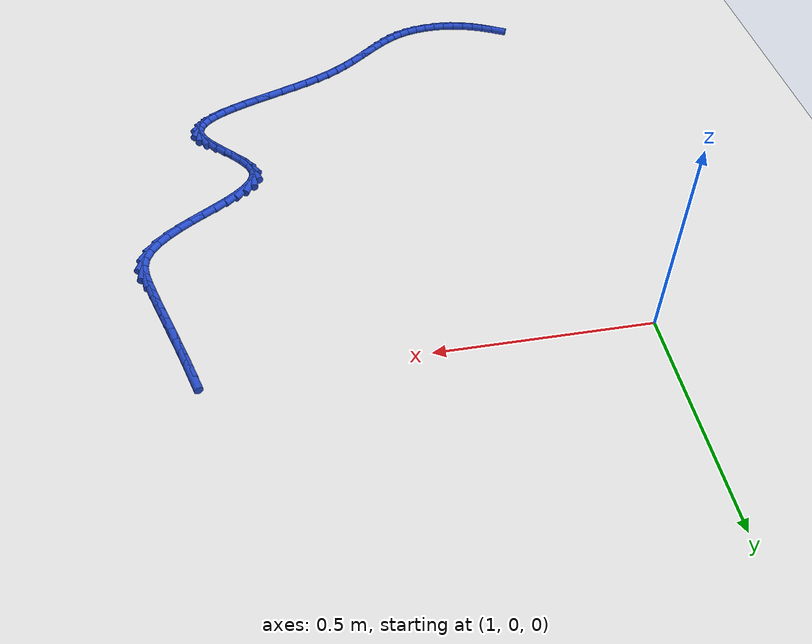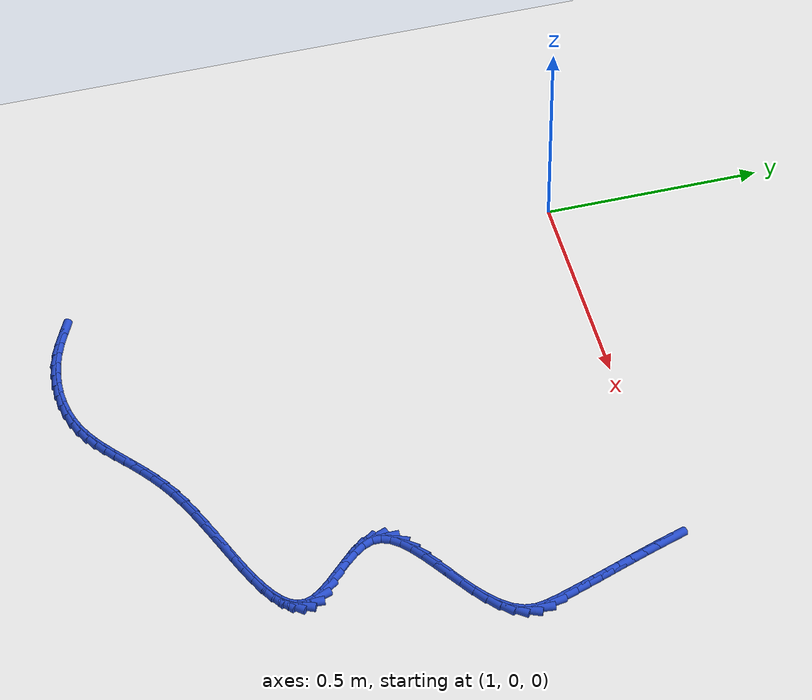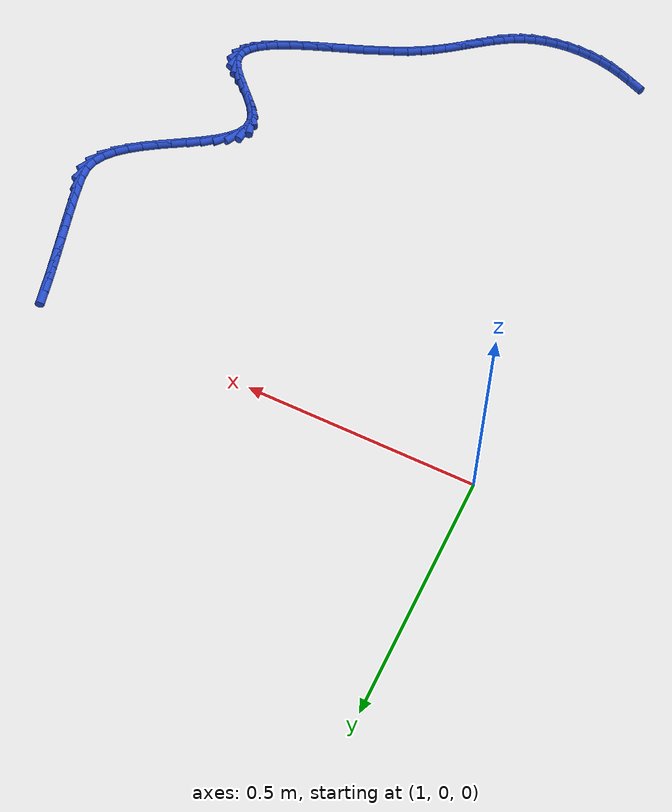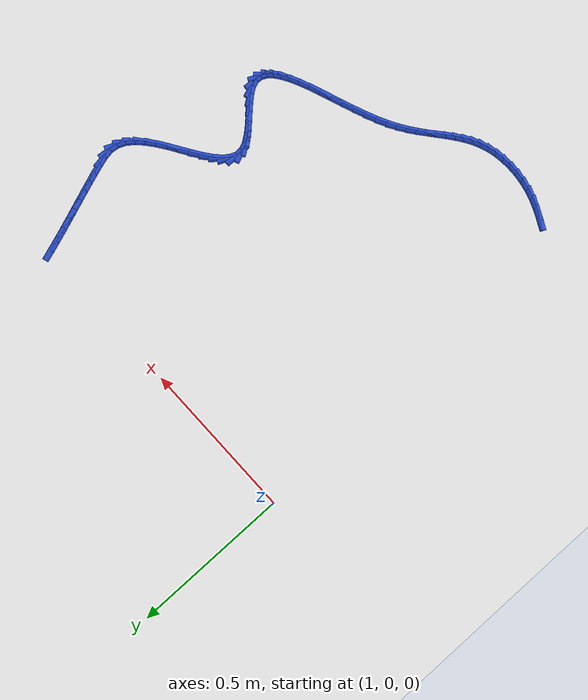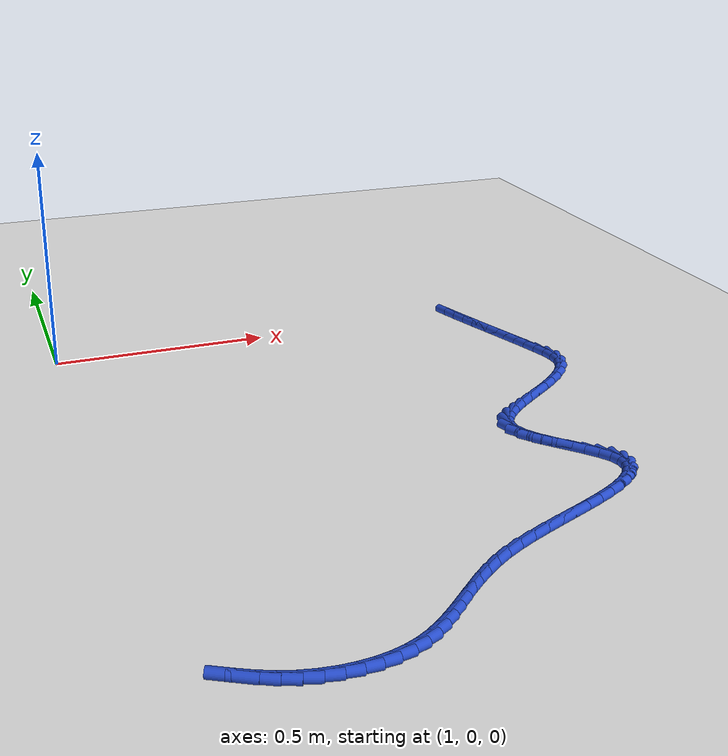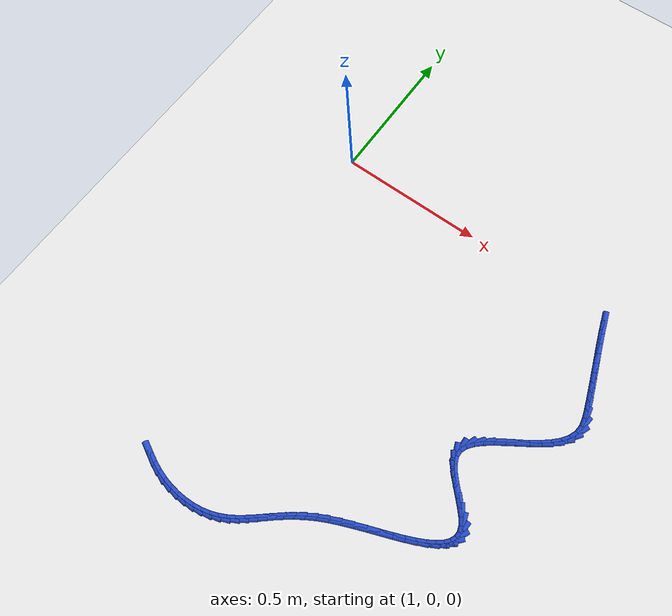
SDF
<sdf version="1.6">
 <world name="default">
  <model name="ground_plane">
   <static>1</static>
   <link name="link">
    <collision name="collision">
     <geometry><plane><normal>0 0 1</normal><size>100 100</size></plane></geometry>
     <surface><friction><ode><mu>100</mu><mu2>50</mu2></ode></friction></surface>
    </collision>
    <visual name="visual">
     <cast_shadows>0</cast_shadows>
     <geometry><plane><normal>0 0 1</normal><size>100 100</size></plane></geometry>
     <material>
      <script><uri>file://media/materials/scripts/gazebo.material</uri><name>Gazebo/WhiteGlow</name></script>
     </material>
    </visual>
   </link>
  </model>
  <model name="line">
   <link name="link_136">
    <pose>2.006014510646212 -0.01637479928357697 0.01 0 1.57 -1.2514243020412616</pose>
    <collision name="collision">
     <geometry><cylinder><radius>0.01</radius><length>0.08</length></cylinder></geometry>
    </collision>
    <visual name="visual">
     <material>
      <script><name>Gazebo/Blue</name><uri>file://media/materials/scripts/gazebo.material</uri></script>
     </material>
     <geometry><cylinder><radius>0.01</radius><length>0.08</length></cylinder></geometry>
    </visual>
   </link>
   <link name="link_137">
    <pose>2.0161293999224874 -0.04696178227051483 0.01 0 1.57 -1.2392567052643202</pose>
    <collision name="collision">
     <geometry><cylinder><radius>0.01</radius><length>0.08</length></cylinder></geometry>
    </collision>
    <visual name="visual">
     <material>
      <script><name>Gazebo/Blue</name><uri>file://media/materials/scripts/gazebo.material</uri></script>
     </material>
     <geometry><cylinder><radius>0.01</radius><length>0.08</length></cylinder></geometry>
    </visual>
   </link>
   <link name="link_138">
    <pose>2.0266727700992804 -0.0775892091995034 0.01 0 1.57 -1.2305973145243494</pose>
    <collision name="collision">
     <geometry><cylinder><radius>0.01</radius><length>0.08</length></cylinder></geometry>
    </collision>
    <visual name="visual">
     <material>
      <script><name>Gazebo/Blue</name><uri>file://media/materials/scripts/gazebo.material</uri></script>
     </material>
     <geometry><cylinder><radius>0.01</radius><length>0.08</length></cylinder></geometry>
    </visual>
   </link>
   <link name="link_139">
    <pose>2.0375050558095142 -0.10819227443157586 0.01 0 1.57 -1.2253384436629051</pose>
    <collision name="collision">
     <geometry><cylinder><radius>0.01</radius><length>0.08</length></cylinder></geometry>
    </collision>
    <visual name="visual">
     <material>
      <script><name>Gazebo/Blue</name><uri>file://media/materials/scripts/gazebo.material</uri></script>
     </material>
     <geometry><cylinder><radius>0.01</radius><length>0.08</length></cylinder></geometry>
    </visual>
   </link>
   <link name="link_140">
    <pose>2.0484866916861124 -0.13870617232776805 0.01 0 1.57 -1.223438492748387</pose>
    <collision name="collision">
     <geometry><cylinder><radius>0.01</radius><length>0.08</length></cylinder></geometry>
    </collision>
    <visual name="visual">
     <material>
      <script><name>Gazebo/Blue</name><uri>file://media/materials/scripts/gazebo.material</uri></script>
     </material>
     <geometry><cylinder><radius>0.01</radius><length>0.08</length></cylinder></geometry>
    </visual>
   </link>
   <link name="link_141">
    <pose>2.0594781123619996 -0.16906609724911587 0.01 0 1.57 -1.224922772293382</pose>
    <collision name="collision">
     <geometry><cylinder><radius>0.01</radius><length>0.08</length></cylinder></geometry>
    </collision>
    <visual name="visual">
     <material>
      <script><name>Gazebo/Blue</name><uri>file://media/materials/scripts/gazebo.material</uri></script>
     </material>
     <geometry><cylinder><radius>0.01</radius><length>0.08</length></cylinder></geometry>
    </visual>
   </link>
   <link name="link_142">
    <pose>2.0703397524700975 -0.19920724355665245 0.01 0 1.57 -1.2298865252566986</pose>
    <collision name="collision">
     <geometry><cylinder><radius>0.01</radius><length>0.08</length></cylinder></geometry>
    </collision>
    <visual name="visual">
     <material>
      <script><name>Gazebo/Blue</name><uri>file://media/materials/scripts/gazebo.material</uri></script>
     </material>
     <geometry><cylinder><radius>0.01</radius><length>0.08</length></cylinder></geometry>
    </visual>
   </link>
   <link name="link_143">
    <pose>2.0809320466433303 -0.2290648056114145 0.01 0 1.57 -1.2385004539938334</pose>
    <collision name="collision">
     <geometry><cylinder><radius>0.01</radius><length>0.08</length></cylinder></geometry>
    </collision>
    <visual name="visual">
     <material>
      <script><name>Gazebo/Blue</name><uri>file://media/materials/scripts/gazebo.material</uri></script>
     </material>
     <geometry><cylinder><radius>0.01</radius><length>0.08</length></cylinder></geometry>
    </visual>
   </link>
   <link name="link_144">
    <pose>2.0911154295146215 -0.2585739777744353 0.01 0 1.57 -1.2510190718284917</pose>
    <collision name="collision">
     <geometry><cylinder><radius>0.01</radius><length>0.08</length></cylinder></geometry>
    </collision>
    <visual name="visual">
     <material>
      <script><name>Gazebo/Blue</name><uri>file://media/materials/scripts/gazebo.material</uri></script>
     </material>
     <geometry><cylinder><radius>0.01</radius><length>0.08</length></cylinder></geometry>
    </visual>
   </link>
   <link name="link_145">
    <pose>2.100750335716894 -0.2876699544067516 0.01 0 1.57 -1.278057567097977</pose>
    <collision name="collision">
     <geometry><cylinder><radius>0.01</radius><length>0.08</length></cylinder></geometry>
    </collision>
    <visual name="visual">
     <material>
      <script><name>Gazebo/Blue</name><uri>file://media/materials/scripts/gazebo.material</uri></script>
     </material>
     <geometry><cylinder><radius>0.01</radius><length>0.08</length></cylinder></geometry>
    </visual>
   </link>
   <link name="link_146">
    <pose>2.1093610694647578 -0.3162392785658507 0.01 0 1.57 -1.4039570924049876</pose>
    <collision name="collision">
     <geometry><cylinder><radius>0.01</radius><length>0.08</length></cylinder></geometry>
    </collision>
    <visual name="visual">
     <material>
      <script><name>Gazebo/Blue</name><uri>file://media/materials/scripts/gazebo.material</uri></script>
     </material>
     <geometry><cylinder><radius>0.01</radius><length>0.08</length></cylinder></geometry>
    </visual>
   </link>
   <link name="link_147">
    <pose>2.1140043325127373 -0.3438113340943036 0.01 0 1.57 1.4580028582752944</pose>
    <collision name="collision">
     <geometry><cylinder><radius>0.01</radius><length>0.08</length></cylinder></geometry>
    </collision>
    <visual name="visual">
     <material>
      <script><name>Gazebo/Blue</name><uri>file://media/materials/scripts/gazebo.material</uri></script>
     </material>
     <geometry><cylinder><radius>0.01</radius><length>0.08</length></cylinder></geometry>
    </visual>
   </link>
   <link name="link_148">
    <pose>2.1110580462051933 -0.3698215380334719 0.01 0 1.57 1.1539672249332595</pose>
    <collision name="collision">
     <geometry><cylinder><radius>0.01</radius><length>0.08</length></cylinder></geometry>
    </collision>
    <visual name="visual">
     <material>
      <script><name>Gazebo/Blue</name><uri>file://media/materials/scripts/gazebo.material</uri></script>
     </material>
     <geometry><cylinder><radius>0.01</radius><length>0.08</length></cylinder></geometry>
    </visual>
   </link>
   <link name="link_149">
    <pose>2.100252926020368 -0.39422474217232295 0.01 0 1.57 0.9252071270127702</pose>
    <collision name="collision">
     <geometry><cylinder><radius>0.01</radius><length>0.08</length></cylinder></geometry>
    </collision>
    <visual name="visual">
     <material>
      <script><name>Gazebo/Blue</name><uri>file://media/materials/scripts/gazebo.material</uri></script>
     </material>
     <geometry><cylinder><radius>0.01</radius><length>0.08</length></cylinder></geometry>
    </visual>
   </link>
   <link name="link_150">
    <pose>2.082927656282022 -0.41722488973702326 0.01 0 1.57 0.7697317307618302</pose>
    <collision name="collision">
     <geometry><cylinder><radius>0.01</radius><length>0.08</length></cylinder></geometry>
    </collision>
    <visual name="visual">
     <material>
      <script><name>Gazebo/Blue</name><uri>file://media/materials/scripts/gazebo.material</uri></script>
     </material>
     <geometry><cylinder><radius>0.01</radius><length>0.08</length></cylinder></geometry>
    </visual>
   </link>
   <link name="link_151">
    <pose>2.0604309936422585 -0.4390274842642848 0.01 0 1.57 0.6690415160479862</pose>
    <collision name="collision">
     <geometry><cylinder><radius>0.01</radius><length>0.08</length></cylinder></geometry>
    </collision>
    <visual name="visual">
     <material>
      <script><name>Gazebo/Blue</name><uri>file://media/materials/scripts/gazebo.material</uri></script>
     </material>
     <geometry><cylinder><radius>0.01</radius><length>0.08</length></cylinder></geometry>
    </visual>
   </link>
   <link name="link_152">
    <pose>2.034111694753181 -0.45983802929081946 0.01 0 1.57 0.607660663411939</pose>
    <collision name="collision">
     <geometry><cylinder><radius>0.01</radius><length>0.08</length></cylinder></geometry>
    </collision>
    <visual name="visual">
     <material>
      <script><name>Gazebo/Blue</name><uri>file://media/materials/scripts/gazebo.material</uri></script>
     </material>
     <geometry><cylinder><radius>0.01</radius><length>0.08</length></cylinder></geometry>
    </visual>
   </link>
   <link name="link_153">
    <pose>2.005318516266895 -0.4798620283533376 0.01 0 1.57 0.5762826537494824</pose>
    <collision name="collision">
     <geometry><cylinder><radius>0.01</radius><length>0.08</length></cylinder></geometry>
    </collision>
    <visual name="visual">
     <material>
      <script><name>Gazebo/Blue</name><uri>file://media/materials/scripts/gazebo.material</uri></script>
     </material>
     <geometry><cylinder><radius>0.01</radius><length>0.08</length></cylinder></geometry>
    </visual>
   </link>
   <link name="link_154">
    <pose>1.9754002148355019 -0.49930498498855136 0.01 0 1.57 0.5708128004188971</pose>
    <collision name="collision">
     <geometry><cylinder><radius>0.01</radius><length>0.08</length></cylinder></geometry>
    </collision>
    <visual name="visual">
     <material>
      <script><name>Gazebo/Blue</name><uri>file://media/materials/scripts/gazebo.material</uri></script>
     </material>
     <geometry><cylinder><radius>0.01</radius><length>0.08</length></cylinder></geometry>
    </visual>
   </link>
   <link name="link_155">
    <pose>1.9457055471111075 -0.5183724027331711 0.01 0 1.57 0.5916665245357686</pose>
    <collision name="collision">
     <geometry><cylinder><radius>0.01</radius><length>0.08</length></cylinder></geometry>
    </collision>
    <visual name="visual">
     <material>
      <script><name>Gazebo/Blue</name><uri>file://media/materials/scripts/gazebo.material</uri></script>
     </material>
     <geometry><cylinder><radius>0.01</radius><length>0.08</length></cylinder></geometry>
    </visual>
   </link>
   <link name="link_156">
    <pose>1.917583269745814 -0.5372697851239092 0.01 0 1.57 0.6443133467865375</pose>
    <collision name="collision">
     <geometry><cylinder><radius>0.01</radius><length>0.08</length></cylinder></geometry>
    </collision>
    <visual name="visual">
     <material>
      <script><name>Gazebo/Blue</name><uri>file://media/materials/scripts/gazebo.material</uri></script>
     </material>
     <geometry><cylinder><radius>0.01</radius><length>0.08</length></cylinder></geometry>
    </visual>
   </link>
   <link name="link_157">
    <pose>1.892382139391727 -0.556202635697476 0.01 0 1.57 0.7416061500884156</pose>
    <collision name="collision">
     <geometry><cylinder><radius>0.01</radius><length>0.08</length></cylinder></geometry>
    </collision>
    <visual name="visual">
     <material>
      <script><name>Gazebo/Blue</name><uri>file://media/materials/scripts/gazebo.material</uri></script>
     </material>
     <geometry><cylinder><radius>0.01</radius><length>0.08</length></cylinder></geometry>
    </visual>
   </link>
   <link name="link_158">
    <pose>1.8714509127009484 -0.5753764579905838 0.01 0 1.57 0.9080933171095671</pose>
    <collision name="collision">
     <geometry><cylinder><radius>0.01</radius><length>0.08</length></cylinder></geometry>
    </collision>
    <visual name="visual">
     <material>
      <script><name>Gazebo/Blue</name><uri>file://media/materials/scripts/gazebo.material</uri></script>
     </material>
     <geometry><cylinder><radius>0.01</radius><length>0.08</length></cylinder></geometry>
    </visual>
   </link>
   <link name="link_159">
    <pose>1.8561383463255834 -0.5949967555399427 0.01 0 1.57 1.1802845441403638</pose>
    <collision name="collision">
     <geometry><cylinder><radius>0.01</radius><length>0.08</length></cylinder></geometry>
    </collision>
    <visual name="visual">
     <material>
      <script><name>Gazebo/Blue</name><uri>file://media/materials/scripts/gazebo.material</uri></script>
     </material>
     <geometry><cylinder><radius>0.01</radius><length>0.08</length></cylinder></geometry>
    </visual>
   </link>
   <link name="link_160">
    <pose>1.8477931969177352 -0.6152690318822648 0.01 0 1.57 1.5694249056176328</pose>
    <collision name="collision">
     <geometry><cylinder><radius>0.01</radius><length>0.08</length></cylinder></geometry>
    </collision>
    <visual name="visual">
     <material>
      <script><name>Gazebo/Blue</name><uri>file://media/materials/scripts/gazebo.material</uri></script>
     </material>
     <geometry><cylinder><radius>0.01</radius><length>0.08</length></cylinder></geometry>
    </visual>
   </link>
   <link name="link_161">
    <pose>1.8477642191014667 -0.636398790253965 0.01 0 1.57 -1.1853216241514721</pose>
    <collision name="collision">
     <geometry><cylinder><radius>0.01</radius><length>0.08</length></cylinder></geometry>
    </collision>
    <visual name="visual">
     <material>
      <script><name>Gazebo/Blue</name><uri>file://media/materials/scripts/gazebo.material</uri></script>
     </material>
     <geometry><cylinder><radius>0.01</radius><length>0.08</length></cylinder></geometry>
    </visual>
   </link>
   <link name="link_162">
    <pose>1.856729157802747 -0.6584921758199496 0.01 0 1.57 -0.956540770199914</pose>
    <collision name="collision">
     <geometry><cylinder><radius>0.01</radius><length>0.08</length></cylinder></geometry>
    </collision>
    <visual name="visual">
     <material>
      <script><name>Gazebo/Blue</name><uri>file://media/materials/scripts/gazebo.material</uri></script>
     </material>
     <geometry><cylinder><radius>0.01</radius><length>0.08</length></cylinder></geometry>
    </visual>
   </link>
   <link name="link_163">
    <pose>1.8727972554665744 -0.6812750092075043 0.01 0 1.57 -0.8411073205549464</pose>
    <collision name="collision">
     <geometry><cylinder><radius>0.01</radius><length>0.08</length></cylinder></geometry>
    </collision>
    <visual name="visual">
     <material>
      <script><name>Gazebo/Blue</name><uri>file://media/materials/scripts/gazebo.material</uri></script>
     </material>
     <geometry><cylinder><radius>0.01</radius><length>0.08</length></cylinder></geometry>
    </visual>
   </link>
   <link name="link_164">
    <pose>1.8934632799788282 -0.704382124270759 0.01 0 1.57 -0.7921086285874129</pose>
    <collision name="collision">
     <geometry><cylinder><radius>0.01</radius><length>0.08</length></cylinder></geometry>
    </collision>
    <visual name="visual">
     <material>
      <script><name>Gazebo/Blue</name><uri>file://media/materials/scripts/gazebo.material</uri></script>
     </material>
     <geometry><cylinder><radius>0.01</radius><length>0.08</length></cylinder></geometry>
    </visual>
   </link>
   <link name="link_165">
    <pose>1.9162219992253906 -0.7274483548638465 0.01 0 1.57 -0.792374799654255</pose>
    <collision name="collision">
     <geometry><cylinder><radius>0.01</radius><length>0.08</length></cylinder></geometry>
    </collision>
    <visual name="visual">
     <material>
      <script><name>Gazebo/Blue</name><uri>file://media/materials/scripts/gazebo.material</uri></script>
     </material>
     <geometry><cylinder><radius>0.01</radius><length>0.08</length></cylinder></geometry>
    </visual>
   </link>
   <link name="link_166">
    <pose>1.9385681810921407 -0.750108534840897 0.01 0 1.57 -0.8448803595684079</pose>
    <collision name="collision">
     <geometry><cylinder><radius>0.01</radius><length>0.08</length></cylinder></geometry>
    </collision>
    <visual name="visual">
     <material>
      <script><name>Gazebo/Blue</name><uri>file://media/materials/scripts/gazebo.material</uri></script>
     </material>
     <geometry><cylinder><radius>0.01</radius><length>0.08</length></cylinder></geometry>
    </visual>
   </link>
   <link name="link_167">
    <pose>1.9579965934649592 -0.7719974980560431 0.01 0 1.57 -0.9771321041293537</pose>
    <collision name="collision">
     <geometry><cylinder><radius>0.01</radius><length>0.08</length></cylinder></geometry>
    </collision>
    <visual name="visual">
     <material>
      <script><name>Gazebo/Blue</name><uri>file://media/materials/scripts/gazebo.material</uri></script>
     </material>
     <geometry><cylinder><radius>0.01</radius><length>0.08</length></cylinder></geometry>
    </visual>
   </link>
   <link name="link_168">
    <pose>1.9720020042297268 -0.792750078363415 0.01 0 1.57 -1.247583071265972</pose>
    <collision name="collision">
     <geometry><cylinder><radius>0.01</radius><length>0.08</length></cylinder></geometry>
    </collision>
    <visual name="visual">
     <material>
      <script><name>Gazebo/Blue</name><uri>file://media/materials/scripts/gazebo.material</uri></script>
     </material>
     <geometry><cylinder><radius>0.01</radius><length>0.08</length></cylinder></geometry>
    </visual>
   </link>
   <link name="link_169">
    <pose>1.9784722565681079 -0.812066608335153 0.01 0 1.57 1.512427036914961</pose>
    <collision name="collision">
     <geometry><cylinder><radius>0.01</radius><length>0.08</length></cylinder></geometry>
    </collision>
    <visual name="visual">
     <material>
      <script><name>Gazebo/Blue</name><uri>file://media/materials/scripts/gazebo.material</uri></script>
     </material>
     <geometry><cylinder><radius>0.01</radius><length>0.08</length></cylinder></geometry>
    </visual>
   </link>
   <link name="link_170">
    <pose>1.9774241796558416 -0.8300021766289694 0.01 0 1.57 1.1329354365256357</pose>
    <collision name="collision">
     <geometry><cylinder><radius>0.01</radius><length>0.08</length></cylinder></geometry>
    </collision>
    <visual name="visual">
     <material>
      <script><name>Gazebo/Blue</name><uri>file://media/materials/scripts/gazebo.material</uri></script>
     </material>
     <geometry><cylinder><radius>0.01</radius><length>0.08</length></cylinder></geometry>
    </visual>
   </link>
   <link name="link_171">
    <pose>1.9695920501685347 -0.8467314212407919 0.01 0 1.57 0.846725927656564</pose>
    <collision name="collision">
     <geometry><cylinder><radius>0.01</radius><length>0.08</length></cylinder></geometry>
    </collision>
    <visual name="visual">
     <material>
      <script><name>Gazebo/Blue</name><uri>file://media/materials/scripts/gazebo.material</uri></script>
     </material>
     <geometry><cylinder><radius>0.01</radius><length>0.08</length></cylinder></geometry>
    </visual>
   </link>
   <link name="link_172">
    <pose>1.95571069213059 -0.8624290713720875 0.01 0 1.57 0.658139573348211</pose>
    <collision name="collision">
     <geometry><cylinder><radius>0.01</radius><length>0.08</length></cylinder></geometry>
    </collision>
    <visual name="visual">
     <material>
      <script><name>Gazebo/Blue</name><uri>file://media/materials/scripts/gazebo.material</uri></script>
     </material>
     <geometry><cylinder><radius>0.01</radius><length>0.08</length></cylinder></geometry>
    </visual>
   </link>
   <link name="link_173">
    <pose>1.9365149295664141 -0.8772698562243224 0.01 0 1.57 0.5371175194850768</pose>
    <collision name="collision">
     <geometry><cylinder><radius>0.01</radius><length>0.08</length></cylinder></geometry>
    </collision>
    <visual name="visual">
     <material>
      <script><name>Gazebo/Blue</name><uri>file://media/materials/scripts/gazebo.material</uri></script>
     </material>
     <geometry><cylinder><radius>0.01</radius><length>0.08</length></cylinder></geometry>
    </visual>
   </link>
   <link name="link_174">
    <pose>1.9127395865004087 -0.8914285049989644 0.01 0 1.57 0.45903726130721806</pose>
    <collision name="collision">
     <geometry><cylinder><radius>0.01</radius><length>0.08</length></cylinder></geometry>
    </collision>
    <visual name="visual">
     <material>
      <script><name>Gazebo/Blue</name><uri>file://media/materials/scripts/gazebo.material</uri></script>
     </material>
     <geometry><cylinder><radius>0.01</radius><length>0.08</length></cylinder></geometry>
    </visual>
   </link>
   <link name="link_175">
    <pose>1.8851194869569807 -0.9050797468974794 0.01 0 1.57 0.4089685670265802</pose>
    <collision name="collision">
     <geometry><cylinder><radius>0.01</radius><length>0.08</length></cylinder></geometry>
    </collision>
    <visual name="visual">
     <material>
      <script><name>Gazebo/Blue</name><uri>file://media/materials/scripts/gazebo.material</uri></script>
     </material>
     <geometry><cylinder><radius>0.01</radius><length>0.08</length></cylinder></geometry>
    </visual>
   </link>
   <link name="link_176">
    <pose>1.854389454960531 -0.9183983111213352 0.01 0 1.57 0.3783838439156369</pose>
    <collision name="collision">
     <geometry><cylinder><radius>0.01</radius><length>0.08</length></cylinder></geometry>
    </collision>
    <visual name="visual">
     <material>
      <script><name>Gazebo/Blue</name><uri>file://media/materials/scripts/gazebo.material</uri></script>
     </material>
     <geometry><cylinder><radius>0.01</radius><length>0.08</length></cylinder></geometry>
    </visual>
   </link>
   <link name="link_177">
    <pose>1.8212843145354676 -0.9315589268719976 0.01 0 1.57 0.3624963657287639</pose>
    <collision name="collision">
     <geometry><cylinder><radius>0.01</radius><length>0.08</length></cylinder></geometry>
    </collision>
    <visual name="visual">
     <material>
      <script><name>Gazebo/Blue</name><uri>file://media/materials/scripts/gazebo.material</uri></script>
     </material>
     <geometry><cylinder><radius>0.01</radius><length>0.08</length></cylinder></geometry>
    </visual>
   </link>
   <link name="link_178">
    <pose>1.786538889706191 -0.9447363233509347 0.01 0 1.57 0.3587663533377662</pose>
    <collision name="collision">
     <geometry><cylinder><radius>0.01</radius><length>0.08</length></cylinder></geometry>
    </collision>
    <visual name="visual">
     <material>
      <script><name>Gazebo/Blue</name><uri>file://media/materials/scripts/gazebo.material</uri></script>
     </material>
     <geometry><cylinder><radius>0.01</radius><length>0.08</length></cylinder></geometry>
    </visual>
   </link>
   <link name="link_179">
    <pose>1.7508880044971094 -0.9581052297596129 0.01 0 1.57 0.3661432173079715</pose>
    <collision name="collision">
     <geometry><cylinder><radius>0.01</radius><length>0.08</length></cylinder></geometry>
    </collision>
    <visual name="visual">
     <material>
      <script><name>Gazebo/Blue</name><uri>file://media/materials/scripts/gazebo.material</uri></script>
     </material>
     <geometry><cylinder><radius>0.01</radius><length>0.08</length></cylinder></geometry>
    </visual>
   </link>
   <link name="link_180">
    <pose>1.7150664829326232 -0.9718403752994991 0.01 0 1.57 0.38473358408277963</pose>
    <collision name="collision">
     <geometry><cylinder><radius>0.01</radius><length>0.08</length></cylinder></geometry>
    </collision>
    <visual name="visual">
     <material>
      <script><name>Gazebo/Blue</name><uri>file://media/materials/scripts/gazebo.material</uri></script>
     </material>
     <geometry><cylinder><radius>0.01</radius><length>0.08</length></cylinder></geometry>
    </visual>
   </link>
   <link name="link_181">
    <pose>1.6798091490371396 -0.9861164891720597 0.01 0 1.57 0.41574346586661287</pose>
    <collision name="collision">
     <geometry><cylinder><radius>0.01</radius><length>0.08</length></cylinder></geometry>
    </collision>
    <visual name="visual">
     <material>
      <script><name>Gazebo/Blue</name><uri>file://media/materials/scripts/gazebo.material</uri></script>
     </material>
     <geometry><cylinder><radius>0.01</radius><length>0.08</length></cylinder></geometry>
    </visual>
   </link>
   <link name="link_182">
    <pose>1.6458508268350616 -1.001108300578762 0.01 0 1.57 0.4616407413939731</pose>
    <collision name="collision">
     <geometry><cylinder><radius>0.01</radius><length>0.08</length></cylinder></geometry>
    </collision>
    <visual name="visual">
     <material>
      <script><name>Gazebo/Blue</name><uri>file://media/materials/scripts/gazebo.material</uri></script>
     </material>
     <geometry><cylinder><radius>0.01</radius><length>0.08</length></cylinder></geometry>
    </visual>
   </link>
   <link name="link_183">
    <pose>1.6139263403507922 -1.0169905387210734 0.01 0 1.57 0.5236763648007694</pose>
    <collision name="collision">
     <geometry><cylinder><radius>0.01</radius><length>0.08</length></cylinder></geometry>
    </collision>
    <visual name="visual">
     <material>
      <script><name>Gazebo/Blue</name><uri>file://media/materials/scripts/gazebo.material</uri></script>
     </material>
     <geometry><cylinder><radius>0.01</radius><length>0.08</length></cylinder></geometry>
    </visual>
   </link>
   <link name="link_184">
    <pose>1.5846609856866622 -1.0338899268173454 0.01 0 1.57 0.5848371305038041</pose>
    <collision name="collision">
     <geometry><cylinder><radius>0.01</radius><length>0.08</length></cylinder></geometry>
    </collision>
    <visual name="visual">
     <material>
      <script><name>Gazebo/Blue</name><uri>file://media/materials/scripts/gazebo.material</uri></script>
     </material>
     <geometry><cylinder><radius>0.01</radius><length>0.08</length></cylinder></geometry>
    </visual>
   </link>
   <link name="link_185">
    <pose>1.5579156230219486 -1.051598136554613 0.01 0 1.57 0.634320109047316</pose>
    <collision name="collision">
     <geometry><cylinder><radius>0.01</radius><length>0.08</length></cylinder></geometry>
    </collision>
    <visual name="visual">
     <material>
      <script><name>Gazebo/Blue</name><uri>file://media/materials/scripts/gazebo.material</uri></script>
     </material>
     <geometry><cylinder><radius>0.01</radius><length>0.08</length></cylinder></geometry>
    </visual>
   </link>
   <link name="link_186">
    <pose>1.533225354942008 -1.0697640603791727 0.01 0 1.57 0.6691994205961503</pose>
    <collision name="collision">
     <geometry><cylinder><radius>0.01</radius><length>0.08</length></cylinder></geometry>
    </collision>
    <visual name="visual">
     <material>
      <script><name>Gazebo/Blue</name><uri>file://media/materials/scripts/gazebo.material</uri></script>
     </material>
     <geometry><cylinder><radius>0.01</radius><length>0.08</length></cylinder></geometry>
    </visual>
   </link>
   <link name="link_187">
    <pose>1.510124076119789 -1.0880360613104776 0.01 0 1.57 0.6869307411012815</pose>
    <collision name="collision">
     <geometry><cylinder><radius>0.01</radius><length>0.08</length></cylinder></geometry>
    </collision>
    <visual name="visual">
     <material>
      <script><name>Gazebo/Blue</name><uri>file://media/materials/scripts/gazebo.material</uri></script>
     </material>
     <geometry><cylinder><radius>0.01</radius><length>0.08</length></cylinder></geometry>
    </visual>
   </link>
   <link name="link_188">
    <pose>1.488145681228243 -1.1060625023679764 0.01 0 1.57 0.6852878657504808</pose>
    <collision name="collision">
     <geometry><cylinder><radius>0.01</radius><length>0.08</length></cylinder></geometry>
    </collision>
    <visual name="visual">
     <material>
      <script><name>Gazebo/Blue</name><uri>file://media/materials/scripts/gazebo.material</uri></script>
     </material>
     <geometry><cylinder><radius>0.01</radius><length>0.08</length></cylinder></geometry>
    </visual>
   </link>
   <link name="link_189">
    <pose>1.466824064940319 -1.1234917465711227 0.01 0 1.57 0.662375531822043</pose>
    <collision name="collision">
     <geometry><cylinder><radius>0.01</radius><length>0.08</length></cylinder></geometry>
    </collision>
    <visual name="visual">
     <material>
      <script><name>Gazebo/Blue</name><uri>file://media/materials/scripts/gazebo.material</uri></script>
     </material>
     <geometry><cylinder><radius>0.01</radius><length>0.08</length></cylinder></geometry>
    </visual>
   </link>
   <link name="link_190">
    <pose>1.4456931219289695 -1.1399721569393662 0.01 0 1.57 0.6168283792384018</pose>
    <collision name="collision">
     <geometry><cylinder><radius>0.01</radius><length>0.08</length></cylinder></geometry>
    </collision>
    <visual name="visual">
     <material>
      <script><name>Gazebo/Blue</name><uri>file://media/materials/scripts/gazebo.material</uri></script>
     </material>
     <geometry><cylinder><radius>0.01</radius><length>0.08</length></cylinder></geometry>
    </visual>
   </link>
   <link name="link_191">
    <pose>1.4242867468671423 -1.1551520964921582 0.01 0 1.57 0.5483191331445442</pose>
    <collision name="collision">
     <geometry><cylinder><radius>0.01</radius><length>0.08</length></cylinder></geometry>
    </collision>
    <visual name="visual">
     <material>
      <script><name>Gazebo/Blue</name><uri>file://media/materials/scripts/gazebo.material</uri></script>
     </material>
     <geometry><cylinder><radius>0.01</radius><length>0.08</length></cylinder></geometry>
    </visual>
   </link>
   <link name="link_192">
    <pose>1.4021388344277894 -1.1686799282489497 0.01 0 1.57 0.45836938649361775</pose>
    <collision name="collision">
     <geometry><cylinder><radius>0.01</radius><length>0.08</length></cylinder></geometry>
    </collision>
    <visual name="visual">
     <material>
      <script><name>Gazebo/Blue</name><uri>file://media/materials/scripts/gazebo.material</uri></script>
     </material>
     <geometry><cylinder><radius>0.01</radius><length>0.08</length></cylinder></geometry>
    </visual>
   </link>
   <link name="link_193">
    <pose>1.3787832792838606 -1.1802040152291915 0.01 0 1.57 0.35207960403139216</pose>
    <collision name="collision">
     <geometry><cylinder><radius>0.01</radius><length>0.08</length></cylinder></geometry>
    </collision>
    <visual name="visual">
     <material>
      <script><name>Gazebo/Blue</name><uri>file://media/materials/scripts/gazebo.material</uri></script>
     </material>
     <geometry><cylinder><radius>0.01</radius><length>0.08</length></cylinder></geometry>
    </visual>
   </link>
   <link name="link_194">
    <pose>1.3537882419621055 -1.1893868667842171 0.01 0 1.57 0.2463288611053427</pose>
    <collision name="collision">
     <geometry><cylinder><radius>0.01</radius><length>0.08</length></cylinder></geometry>
    </collision>
    <visual name="visual">
     <material>
      <script><name>Gazebo/Blue</name><uri>file://media/materials/scripts/gazebo.material</uri></script>
     </material>
     <geometry><cylinder><radius>0.01</radius><length>0.08</length></cylinder></geometry>
    </visual>
   </link>
   <link name="link_195">
    <pose>1.3271754694474827 -1.196078251121133 0.01 0 1.57 0.14886038611786778</pose>
    <collision name="collision">
     <geometry><cylinder><radius>0.01</radius><length>0.08</length></cylinder></geometry>
    </collision>
    <visual name="visual">
     <material>
      <script><name>Gazebo/Blue</name><uri>file://media/materials/scripts/gazebo.material</uri></script>
     </material>
     <geometry><cylinder><radius>0.01</radius><length>0.08</length></cylinder></geometry>
    </visual>
   </link>
   <link name="link_196">
    <pose>1.299287911343755 -1.2002605418936634 0.01 0 1.57 0.05749391643538192</pose>
    <collision name="collision">
     <geometry><cylinder><radius>0.01</radius><length>0.08</length></cylinder></geometry>
    </collision>
    <visual name="visual">
     <material>
      <script><name>Gazebo/Blue</name><uri>file://media/materials/scripts/gazebo.material</uri></script>
     </material>
     <geometry><cylinder><radius>0.01</radius><length>0.08</length></cylinder></geometry>
    </visual>
   </link>
   <link name="link_197">
    <pose>1.2704753138212073 -1.201918918653385 0.01 0 1.57 -0.029947521872138956</pose>
    <collision name="collision">
     <geometry><cylinder><radius>0.01</radius><length>0.08</length></cylinder></geometry>
    </collision>
    <visual name="visual">
     <material>
      <script><name>Gazebo/Blue</name><uri>file://media/materials/scripts/gazebo.material</uri></script>
     </material>
     <geometry><cylinder><radius>0.01</radius><length>0.08</length></cylinder></geometry>
    </visual>
   </link>
   <link name="link_198">
    <pose>1.2410874230501228 -1.2010385609518766 0.01 0 1.57 -0.11544233904125523</pose>
    <collision name="collision">
     <geometry><cylinder><radius>0.01</radius><length>0.08</length></cylinder></geometry>
    </collision>
    <visual name="visual">
     <material>
      <script><name>Gazebo/Blue</name><uri>file://media/materials/scripts/gazebo.material</uri></script>
     </material>
     <geometry><cylinder><radius>0.01</radius><length>0.08</length></cylinder></geometry>
    </visual>
   </link>
   <link name="link_199">
    <pose>1.211473985200786 -1.1976046483407146 0.01 0 1.57 -0.20079865036618108</pose>
    <collision name="collision">
     <geometry><cylinder><radius>0.01</radius><length>0.08</length></cylinder></geometry>
    </collision>
    <visual name="visual">
     <material>
      <script><name>Gazebo/Blue</name><uri>file://media/materials/scripts/gazebo.material</uri></script>
     </material>
     <geometry><cylinder><radius>0.01</radius><length>0.08</length></cylinder></geometry>
    </visual>
   </link>
   <link name="link_200">
    <pose>1.1819847464434812 -1.1916023603714776 0.01 0 1.57 -0.28768660867121</pose>
    <collision name="collision">
     <geometry><cylinder><radius>0.01</radius><length>0.08</length></cylinder></geometry>
    </collision>
    <visual name="visual">
     <material>
      <script><name>Gazebo/Blue</name><uri>file://media/materials/scripts/gazebo.material</uri></script>
     </material>
     <geometry><cylinder><radius>0.01</radius><length>0.08</length></cylinder></geometry>
    </visual>
   </link>
   <link name="link_201">
    <pose>1.1529694529484926 -1.1830168765957427 0.01 0 1.57 -0.37464526844396817</pose>
    <collision name="collision">
     <geometry><cylinder><radius>0.01</radius><length>0.08</length></cylinder></geometry>
    </collision>
    <visual name="visual">
     <material>
      <script><name>Gazebo/Blue</name><uri>file://media/materials/scripts/gazebo.material</uri></script>
     </material>
     <geometry><cylinder><radius>0.01</radius><length>0.08</length></cylinder></geometry>
    </visual>
   </link>
   <link name="link_202">
    <pose>1.12474337757884 -1.1719179056452234 0.01 0 1.57 -0.4385116153406151</pose>
    <collision name="collision">
     <geometry><cylinder><radius>0.01</radius><length>0.08</length></cylinder></geometry>
    </collision>
    <visual name="visual">
     <material>
      <script><name>Gazebo/Blue</name><uri>file://media/materials/scripts/gazebo.material</uri></script>
     </material>
     <geometry><cylinder><radius>0.01</radius><length>0.08</length></cylinder></geometry>
    </visual>
   </link>
   <link name="link_203">
    <pose>1.0973397934424272 -1.1590666238926366 0.01 0 1.57 -0.4684759883392197</pose>
    <collision name="collision">
     <geometry><cylinder><radius>0.01</radius><length>0.08</length></cylinder></geometry>
    </collision>
    <visual name="visual">
     <material>
      <script><name>Gazebo/Blue</name><uri>file://media/materials/scripts/gazebo.material</uri></script>
     </material>
     <geometry><cylinder><radius>0.01</radius><length>0.08</length></cylinder></geometry>
    </visual>
   </link>
  </model>
 </world>
</sdf>
